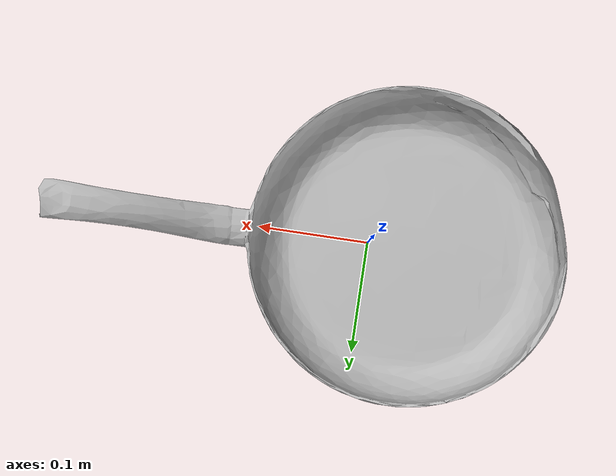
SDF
<?xml version='1.0'?>
<sdf version='1.6'>
	<model name='a_fryingpan'>
		<static>false</static>
		<pose>0 0 0 0 0 0</pose>

		<link name='link'>
			<inertial>
			<mass>0.861</mass>
			<pose>0.0010123 0.00011913 0.00017042 0 0 0</pose>
				<inertia>
					<ixx>9.7907e-05</ixx>
					<ixy>0</ixy>
					<ixz>0</ixz>
					<iyy>0.00026237</iyy>
					<iyz>0</iyz>
					<izz>0.00019284</izz>
				</inertia>
			</inertial>
			<collision name='collision'>
				<geometry>
					<mesh>
						<uri>model://a_fryingpan/a_fryingpan.dae</uri>
					</mesh>
				</geometry>
				<surface>
					<friction>
						<ode>
							<mu>0.2</mu>
							<mu2>0.2</mu2>
						</ode>
					</friction>
				</surface>
			</collision>
			<visual name='visual'>
				<geometry>
					<mesh>
						<uri>model://a_fryingpan/a_fryingpan.dae</uri>
					</mesh>
				</geometry>
			</visual>
		</link>
	</model>
</sdf>
